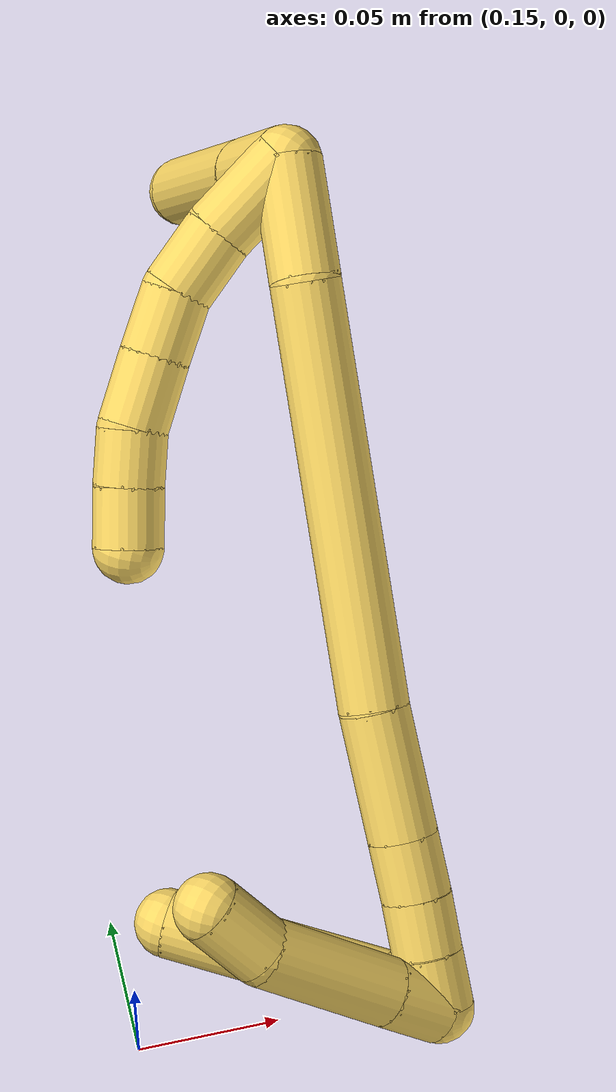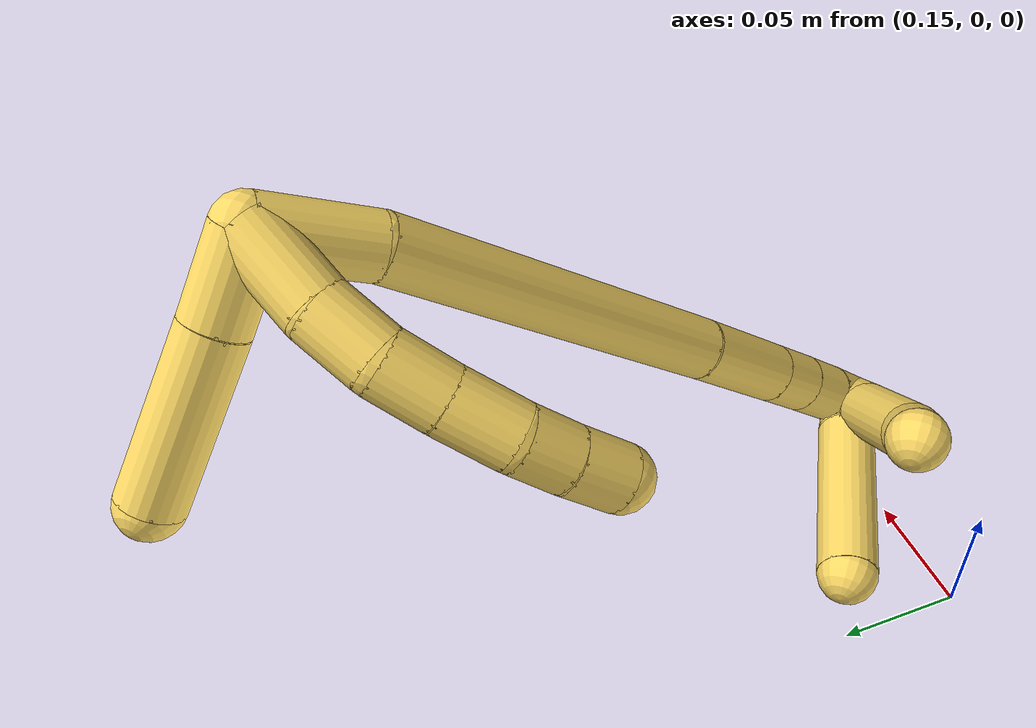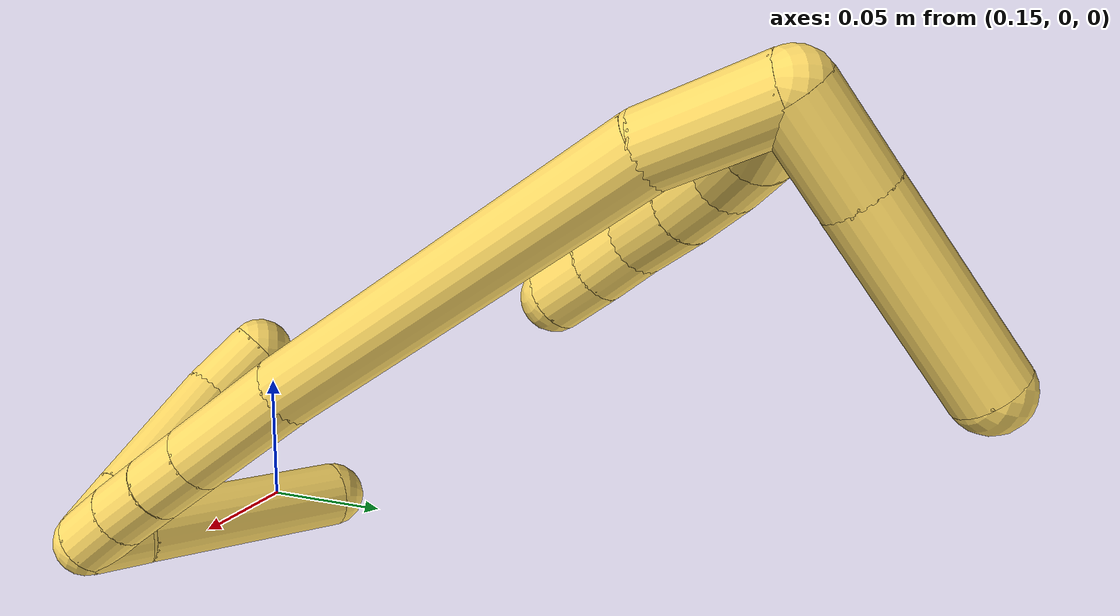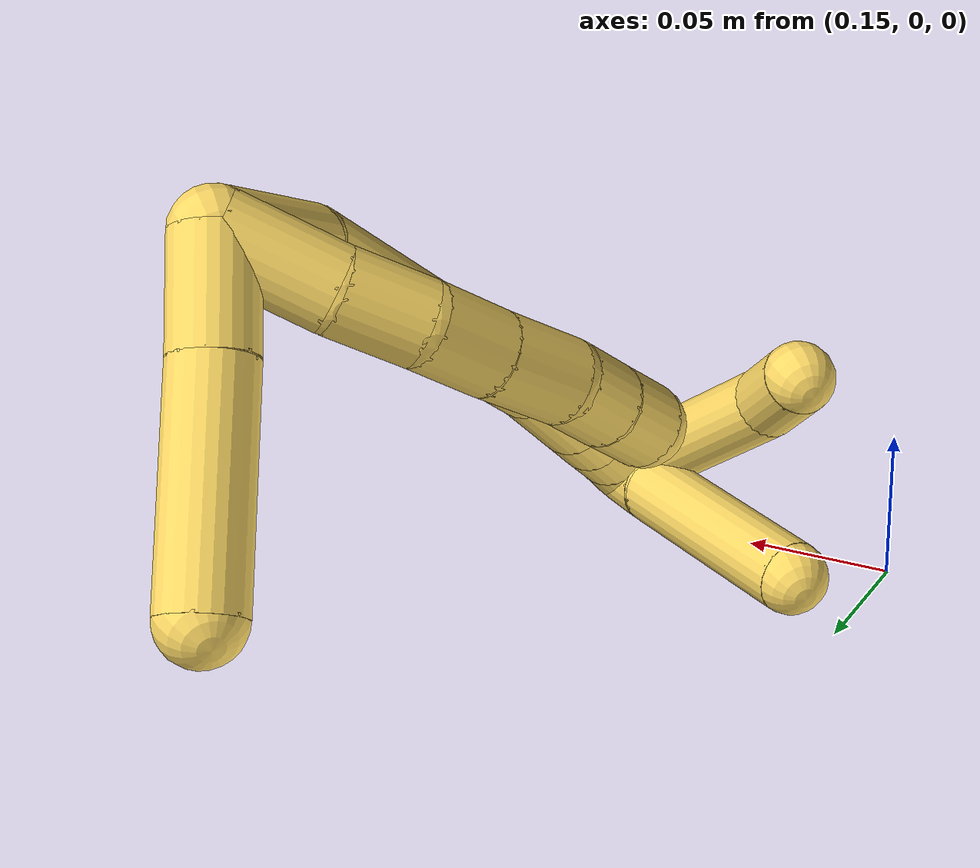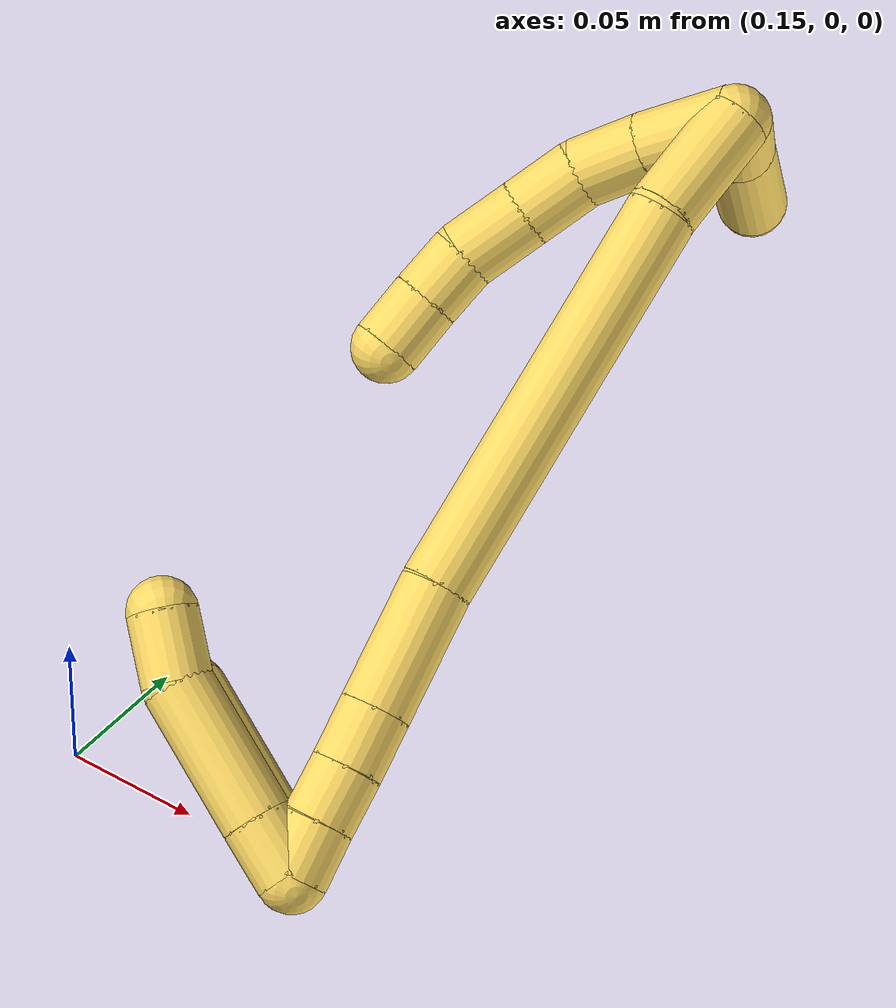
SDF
<sdf version="1.7">
 <world name="default">
  <model name="5">
   <static>0</static>
   <link name="5">
    <collision name="collision-cylinder-e_1_2_8">
     <pose>0.007347 -0.013925 -0.006676 2.01786 0.444054 0.688608</pose>
     <geometry><cylinder><radius>0.0125</radius><length>0.034203</length></cylinder></geometry>
     <surface>
      <friction><ode><mu>1.16</mu><mu2>1.16</mu2><slip1>0</slip1><slip2>0</slip2></ode></friction>
      <contact><ode><kp>1e+06</kp><kd>1</kd><max_vel>0</max_vel><min_depth>0.001</min_depth></ode></contact>
     </surface>
    </collision>
    <visual name="visual-cylinder-e_1_2_8">
     <pose>0.007347 -0.013925 -0.006676 2.01786 0.444054 0.688608</pose>
     <geometry><cylinder><radius>0.0125</radius><length>0.034203</length></cylinder></geometry>
     <material><ambient>1 0.858824 0.4 1</ambient></material>
    </visual>
    <collision name="collision-cylinder-e_2_8_9">
     <pose>0.020189 -0.038636 -0.016255 1.83364 0.45723 0.589449</pose>
     <geometry><cylinder><radius>0.0125</radius><length>0.024895</length></cylinder></geometry>
     <surface>
      <friction><ode><mu>1.16</mu><mu2>1.16</mu2><slip1>0</slip1><slip2>0</slip2></ode></friction>
      <contact><ode><kp>1e+06</kp><kd>1</kd><max_vel>0</max_vel><min_depth>0.001</min_depth></ode></contact>
     </surface>
    </collision>
    <visual name="visual-cylinder-e_2_8_9">
     <pose>0.020189 -0.038636 -0.016255 1.83364 0.45723 0.589449</pose>
     <geometry><cylinder><radius>0.0125</radius><length>0.024895</length></cylinder></geometry>
     <material><ambient>1 0.858824 0.4 1</ambient></material>
    </visual>
    <collision name="collision-cylinder-e_3_9_10">
     <pose>0.032446 -0.059146 -0.0189 1.54441 0.60739 0.59249</pose>
     <geometry><cylinder><radius>0.0125</radius><length>0.023695</length></cylinder></geometry>
     <surface>
      <friction><ode><mu>1.16</mu><mu2>1.16</mu2><slip1>0</slip1><slip2>0</slip2></ode></friction>
      <contact><ode><kp>1e+06</kp><kd>1</kd><max_vel>0</max_vel><min_depth>0.001</min_depth></ode></contact>
     </surface>
    </collision>
    <visual name="visual-cylinder-e_3_9_10">
     <pose>0.032446 -0.059146 -0.0189 1.54441 0.60739 0.59249</pose>
     <geometry><cylinder><radius>0.0125</radius><length>0.023695</length></cylinder></geometry>
     <material><ambient>1 0.858824 0.4 1</ambient></material>
    </visual>
    <collision name="collision-cylinder-e_4_10_11">
     <pose>0.0463 -0.079606 -0.017826 1.49483 0.582558 0.542038</pose>
     <geometry><cylinder><radius>0.0125</radius><length>0.025785</length></cylinder></geometry>
     <surface>
      <friction><ode><mu>1.16</mu><mu2>1.16</mu2><slip1>0</slip1><slip2>0</slip2></ode></friction>
      <contact><ode><kp>1e+06</kp><kd>1</kd><max_vel>0</max_vel><min_depth>0.001</min_depth></ode></contact>
     </surface>
    </collision>
    <visual name="visual-cylinder-e_4_10_11">
     <pose>0.0463 -0.079606 -0.017826 1.49483 0.582558 0.542038</pose>
     <geometry><cylinder><radius>0.0125</radius><length>0.025785</length></cylinder></geometry>
     <material><ambient>1 0.858824 0.4 1</ambient></material>
    </visual>
    <collision name="collision-cylinder-e_5_11_12">
     <pose>0.060124 -0.097397 -0.014681 1.25212 0.736035 0.543817</pose>
     <geometry><cylinder><radius>0.0125</radius><length>0.020051</length></cylinder></geometry>
     <surface>
      <friction><ode><mu>1.16</mu><mu2>1.16</mu2><slip1>0</slip1><slip2>0</slip2></ode></friction>
      <contact><ode><kp>1e+06</kp><kd>1</kd><max_vel>0</max_vel><min_depth>0.001</min_depth></ode></contact>
     </surface>
    </collision>
    <visual name="visual-cylinder-e_5_11_12">
     <pose>0.060124 -0.097397 -0.014681 1.25212 0.736035 0.543817</pose>
     <geometry><cylinder><radius>0.0125</radius><length>0.020051</length></cylinder></geometry>
     <material><ambient>1 0.858824 0.4 1</ambient></material>
    </visual>
    <collision name="collision-cylinder-e_6_12_6">
     <pose>0.073988 -0.111766 -0.009221 1.16619 0.730992 0.494517</pose>
     <geometry><cylinder><radius>0.0125</radius><length>0.021371</length></cylinder></geometry>
     <surface>
      <friction><ode><mu>1.16</mu><mu2>1.16</mu2><slip1>0</slip1><slip2>0</slip2></ode></friction>
      <contact><ode><kp>1e+06</kp><kd>1</kd><max_vel>0</max_vel><min_depth>0.001</min_depth></ode></contact>
     </surface>
    </collision>
    <visual name="visual-cylinder-e_6_12_6">
     <pose>0.073988 -0.111766 -0.009221 1.16619 0.730992 0.494517</pose>
     <geometry><cylinder><radius>0.0125</radius><length>0.021371</length></cylinder></geometry>
     <material><ambient>1 0.858824 0.4 1</ambient></material>
    </visual>
    <collision name="collision-cylinder-e_1_2_13">
     <pose>0.011274 0.003542 -0.012092 -2.85663 0.729928 -2.42326</pose>
     <geometry><cylinder><radius>0.0125</radius><length>0.033816</length></cylinder></geometry>
     <surface>
      <friction><ode><mu>1.16</mu><mu2>1.16</mu2><slip1>0</slip1><slip2>0</slip2></ode></friction>
      <contact><ode><kp>1e+06</kp><kd>1</kd><max_vel>0</max_vel><min_depth>0.001</min_depth></ode></contact>
     </surface>
    </collision>
    <visual name="visual-cylinder-e_1_2_13">
     <pose>0.011274 0.003542 -0.012092 -2.85663 0.729928 -2.42326</pose>
     <geometry><cylinder><radius>0.0125</radius><length>0.033816</length></cylinder></geometry>
     <material><ambient>1 0.858824 0.4 1</ambient></material>
    </visual>
    <collision name="collision-cylinder-e_2_13_5">
     <pose>0.044741 0.015153 -0.047368 -2.80666 0.735021 -2.31412</pose>
     <geometry><cylinder><radius>0.0125</radius><length>0.066184</length></cylinder></geometry>
     <surface>
      <friction><ode><mu>1.16</mu><mu2>1.16</mu2><slip1>0</slip1><slip2>0</slip2></ode></friction>
      <contact><ode><kp>1e+06</kp><kd>1</kd><max_vel>0</max_vel><min_depth>0.001</min_depth></ode></contact>
     </surface>
    </collision>
    <visual name="visual-cylinder-e_2_13_5">
     <pose>0.044741 0.015153 -0.047368 -2.80666 0.735021 -2.31412</pose>
     <geometry><cylinder><radius>0.0125</radius><length>0.066184</length></cylinder></geometry>
     <material><ambient>1 0.858824 0.4 1</ambient></material>
    </visual>
    <collision name="collision-cylinder-e_1_2_14">
     <pose>0.011228 -0.014752 0.010902 0.934339 0.549274 0.282351</pose>
     <geometry><cylinder><radius>0.0125</radius><length>0.043013</length></cylinder></geometry>
     <surface>
      <friction><ode><mu>1.16</mu><mu2>1.16</mu2><slip1>0</slip1><slip2>0</slip2></ode></friction>
      <contact><ode><kp>1e+06</kp><kd>1</kd><max_vel>0</max_vel><min_depth>0.001</min_depth></ode></contact>
     </surface>
    </collision>
    <visual name="visual-cylinder-e_1_2_14">
     <pose>0.011228 -0.014752 0.010902 0.934339 0.549274 0.282351</pose>
     <geometry><cylinder><radius>0.0125</radius><length>0.043013</length></cylinder></geometry>
     <material><ambient>1 0.858824 0.4 1</ambient></material>
    </visual>
    <collision name="collision-cylinder-e_2_14_15">
     <pose>0.073527 -0.073147 0.053663 0.940245 0.75721 0.398882</pose>
     <geometry><cylinder><radius>0.0125</radius><length>0.148702</length></cylinder></geometry>
     <surface>
      <friction><ode><mu>1.16</mu><mu2>1.16</mu2><slip1>0</slip1><slip2>0</slip2></ode></friction>
      <contact><ode><kp>1e+06</kp><kd>1</kd><max_vel>0</max_vel><min_depth>0.001</min_depth></ode></contact>
     </surface>
    </collision>
    <visual name="visual-cylinder-e_2_14_15">
     <pose>0.073527 -0.073147 0.053663 0.940245 0.75721 0.398882</pose>
     <geometry><cylinder><radius>0.0125</radius><length>0.148702</length></cylinder></geometry>
     <material><ambient>1 0.858824 0.4 1</ambient></material>
    </visual>
    <collision name="collision-cylinder-e_3_15_16">
     <pose>0.141372 -0.128638 0.095826 0.854922 0.818388 0.390098</pose>
     <geometry><cylinder><radius>0.0125</radius><length>0.045951</length></cylinder></geometry>
     <surface>
      <friction><ode><mu>1.16</mu><mu2>1.16</mu2><slip1>0</slip1><slip2>0</slip2></ode></friction>
      <contact><ode><kp>1e+06</kp><kd>1</kd><max_vel>0</max_vel><min_depth>0.001</min_depth></ode></contact>
     </surface>
    </collision>
    <visual name="visual-cylinder-e_3_15_16">
     <pose>0.141372 -0.128638 0.095826 0.854922 0.818388 0.390098</pose>
     <geometry><cylinder><radius>0.0125</radius><length>0.045951</length></cylinder></geometry>
     <material><ambient>1 0.858824 0.4 1</ambient></material>
    </visual>
    <collision name="collision-cylinder-e_4_16_17">
     <pose>0.16608 -0.14607 0.111011 0.852549 0.819117 0.389281</pose>
     <geometry><cylinder><radius>0.0125</radius><length>0.021724</length></cylinder></geometry>
     <surface>
      <friction><ode><mu>1.16</mu><mu2>1.16</mu2><slip1>0</slip1><slip2>0</slip2></ode></friction>
      <contact><ode><kp>1e+06</kp><kd>1</kd><max_vel>0</max_vel><min_depth>0.001</min_depth></ode></contact>
     </surface>
    </collision>
    <visual name="visual-cylinder-e_4_16_17">
     <pose>0.16608 -0.14607 0.111011 0.852549 0.819117 0.389281</pose>
     <geometry><cylinder><radius>0.0125</radius><length>0.021724</length></cylinder></geometry>
     <material><ambient>1 0.858824 0.4 1</ambient></material>
    </visual>
    <collision name="collision-cylinder-e_5_17_18">
     <pose>0.18144 -0.157096 0.120234 0.897274 0.817626 0.41119</pose>
     <geometry><cylinder><radius>0.0125</radius><length>0.020353</length></cylinder></geometry>
     <surface>
      <friction><ode><mu>1.16</mu><mu2>1.16</mu2><slip1>0</slip1><slip2>0</slip2></ode></friction>
      <contact><ode><kp>1e+06</kp><kd>1</kd><max_vel>0</max_vel><min_depth>0.001</min_depth></ode></contact>
     </surface>
    </collision>
    <visual name="visual-cylinder-e_5_17_18">
     <pose>0.18144 -0.157096 0.120234 0.897274 0.817626 0.41119</pose>
     <geometry><cylinder><radius>0.0125</radius><length>0.020353</length></cylinder></geometry>
     <material><ambient>1 0.858824 0.4 1</ambient></material>
    </visual>
    <collision name="collision-cylinder-e_6_18_1">
     <pose>0.196517 -0.167652 0.1288 0.880593 0.856572 0.423742</pose>
     <geometry><cylinder><radius>0.0125</radius><length>0.020256</length></cylinder></geometry>
     <surface>
      <friction><ode><mu>1.16</mu><mu2>1.16</mu2><slip1>0</slip1><slip2>0</slip2></ode></friction>
      <contact><ode><kp>1e+06</kp><kd>1</kd><max_vel>0</max_vel><min_depth>0.001</min_depth></ode></contact>
     </surface>
    </collision>
    <visual name="visual-cylinder-e_6_18_1">
     <pose>0.196517 -0.167652 0.1288 0.880593 0.856572 0.423742</pose>
     <geometry><cylinder><radius>0.0125</radius><length>0.020256</length></cylinder></geometry>
     <material><ambient>1 0.858824 0.4 1</ambient></material>
    </visual>
    <collision name="collision-cylinder-e_1_1_19">
     <pose>0.196498 -0.177613 0.126475 2.50456 -0.755382 -1.7547</pose>
     <geometry><cylinder><radius>0.0125</radius><length>0.022379</length></cylinder></geometry>
     <surface>
      <friction><ode><mu>1.16</mu><mu2>1.16</mu2><slip1>0</slip1><slip2>0</slip2></ode></friction>
      <contact><ode><kp>1e+06</kp><kd>1</kd><max_vel>0</max_vel><min_depth>0.001</min_depth></ode></contact>
     </surface>
    </collision>
    <visual name="visual-cylinder-e_1_1_19">
     <pose>0.196498 -0.177613 0.126475 2.50456 -0.755382 -1.7547</pose>
     <geometry><cylinder><radius>0.0125</radius><length>0.022379</length></cylinder></geometry>
     <material><ambient>1 0.858824 0.4 1</ambient></material>
    </visual>
    <collision name="collision-cylinder-e_2_19_20">
     <pose>0.170862 -0.193537 0.104315 2.52446 -0.753673 -1.7855</pose>
     <geometry><cylinder><radius>0.0125</radius><length>0.052505</length></cylinder></geometry>
     <surface>
      <friction><ode><mu>1.16</mu><mu2>1.16</mu2><slip1>0</slip1><slip2>0</slip2></ode></friction>
      <contact><ode><kp>1e+06</kp><kd>1</kd><max_vel>0</max_vel><min_depth>0.001</min_depth></ode></contact>
     </surface>
    </collision>
    <visual name="visual-cylinder-e_2_19_20">
     <pose>0.170862 -0.193537 0.104315 2.52446 -0.753673 -1.7855</pose>
     <geometry><cylinder><radius>0.0125</radius><length>0.052505</length></cylinder></geometry>
     <material><ambient>1 0.858824 0.4 1</ambient></material>
    </visual>
    <collision name="collision-cylinder-e_3_20_4">
     <pose>0.143259 -0.206058 0.080783 2.96134 -0.874883 -2.75981</pose>
     <geometry><cylinder><radius>0.0125</radius><length>0.025116</length></cylinder></geometry>
     <surface>
      <friction><ode><mu>1.16</mu><mu2>1.16</mu2><slip1>0</slip1><slip2>0</slip2></ode></friction>
      <contact><ode><kp>1e+06</kp><kd>1</kd><max_vel>0</max_vel><min_depth>0.001</min_depth></ode></contact>
     </surface>
    </collision>
    <visual name="visual-cylinder-e_3_20_4">
     <pose>0.143259 -0.206058 0.080783 2.96134 -0.874883 -2.75981</pose>
     <geometry><cylinder><radius>0.0125</radius><length>0.025116</length></cylinder></geometry>
     <material><ambient>1 0.858824 0.4 1</ambient></material>
    </visual>
    <collision name="collision-cylinder-e_1_1_21">
     <pose>0.201814 -0.174108 0.122768 3.01166 -0.22394 -2.09249</pose>
     <geometry><cylinder><radius>0.0125</radius><length>0.021215</length></cylinder></geometry>
     <surface>
      <friction><ode><mu>1.16</mu><mu2>1.16</mu2><slip1>0</slip1><slip2>0</slip2></ode></friction>
      <contact><ode><kp>1e+06</kp><kd>1</kd><max_vel>0</max_vel><min_depth>0.001</min_depth></ode></contact>
     </surface>
    </collision>
    <visual name="visual-cylinder-e_1_1_21">
     <pose>0.201814 -0.174108 0.122768 3.01166 -0.22394 -2.09249</pose>
     <geometry><cylinder><radius>0.0125</radius><length>0.021215</length></cylinder></geometry>
     <material><ambient>1 0.858824 0.4 1</ambient></material>
    </visual>
    <collision name="collision-cylinder-e_2_21_3">
     <pose>0.193109 -0.184374 0.074674 2.90995 -0.161886 -1.21774</pose>
     <geometry><cylinder><radius>0.0125</radius><length>0.078785</length></cylinder></geometry>
     <surface>
      <friction><ode><mu>1.16</mu><mu2>1.16</mu2><slip1>0</slip1><slip2>0</slip2></ode></friction>
      <contact><ode><kp>1e+06</kp><kd>1</kd><max_vel>0</max_vel><min_depth>0.001</min_depth></ode></contact>
     </surface>
    </collision>
    <visual name="visual-cylinder-e_2_21_3">
     <pose>0.193109 -0.184374 0.074674 2.90995 -0.161886 -1.21774</pose>
     <geometry><cylinder><radius>0.0125</radius><length>0.078785</length></cylinder></geometry>
     <material><ambient>1 0.858824 0.4 1</ambient></material>
    </visual>
    <collision name="collision-sphere-3">
     <pose>0.18676 -0.193299 0.036835 0 -0 0</pose>
     <geometry><sphere><radius>0.0125</radius></sphere></geometry>
     <surface>
      <friction><ode><mu>1.16</mu><mu2>1.16</mu2><slip1>0</slip1><slip2>0</slip2></ode></friction>
      <contact><ode><kp>1e+06</kp><kd>1</kd><max_vel>0</max_vel><min_depth>0.001</min_depth></ode></contact>
     </surface>
    </collision>
    <visual name="visual-sphere-3">
     <pose>0.18676 -0.193299 0.036835 0 -0 0</pose>
     <geometry><sphere><radius>0.0125</radius></sphere></geometry>
     <material><ambient>1 0.858824 0.4 1</ambient></material>
    </visual>
    <collision name="collision-sphere-21">
     <pose>0.199458 -0.175448 0.112513 0 -0 0</pose>
     <geometry><sphere><radius>0.0125</radius></sphere></geometry>
     <surface>
      <friction><ode><mu>1.16</mu><mu2>1.16</mu2><slip1>0</slip1><slip2>0</slip2></ode></friction>
      <contact><ode><kp>1e+06</kp><kd>1</kd><max_vel>0</max_vel><min_depth>0.001</min_depth></ode></contact>
     </surface>
    </collision>
    <visual name="visual-sphere-21">
     <pose>0.199458 -0.175448 0.112513 0 -0 0</pose>
     <geometry><sphere><radius>0.0125</radius></sphere></geometry>
     <material><ambient>1 0.858824 0.4 1</ambient></material>
    </visual>
    <collision name="collision-sphere-4">
     <pose>0.133621 -0.207501 0.072863 0 -0 0</pose>
     <geometry><sphere><radius>0.0125</radius></sphere></geometry>
     <surface>
      <friction><ode><mu>1.16</mu><mu2>1.16</mu2><slip1>0</slip1><slip2>0</slip2></ode></friction>
      <contact><ode><kp>1e+06</kp><kd>1</kd><max_vel>0</max_vel><min_depth>0.001</min_depth></ode></contact>
     </surface>
    </collision>
    <visual name="visual-sphere-4">
     <pose>0.133621 -0.207501 0.072863 0 -0 0</pose>
     <geometry><sphere><radius>0.0125</radius></sphere></geometry>
     <material><ambient>1 0.858824 0.4 1</ambient></material>
    </visual>
    <collision name="collision-sphere-20">
     <pose>0.152897 -0.204615 0.088703 0 -0 0</pose>
     <geometry><sphere><radius>0.0125</radius></sphere></geometry>
     <surface>
      <friction><ode><mu>1.16</mu><mu2>1.16</mu2><slip1>0</slip1><slip2>0</slip2></ode></friction>
      <contact><ode><kp>1e+06</kp><kd>1</kd><max_vel>0</max_vel><min_depth>0.001</min_depth></ode></contact>
     </surface>
    </collision>
    <visual name="visual-sphere-20">
     <pose>0.152897 -0.204615 0.088703 0 -0 0</pose>
     <geometry><sphere><radius>0.0125</radius></sphere></geometry>
     <material><ambient>1 0.858824 0.4 1</ambient></material>
    </visual>
    <collision name="collision-sphere-12">
     <pose>0.066855 -0.104453 -0.012353 0 -0 0</pose>
     <geometry><sphere><radius>0.0125</radius></sphere></geometry>
     <surface>
      <friction><ode><mu>1.16</mu><mu2>1.16</mu2><slip1>0</slip1><slip2>0</slip2></ode></friction>
      <contact><ode><kp>1e+06</kp><kd>1</kd><max_vel>0</max_vel><min_depth>0.001</min_depth></ode></contact>
     </surface>
    </collision>
    <visual name="visual-sphere-12">
     <pose>0.066855 -0.104453 -0.012353 0 -0 0</pose>
     <geometry><sphere><radius>0.0125</radius></sphere></geometry>
     <material><ambient>1 0.858824 0.4 1</ambient></material>
    </visual>
    <collision name="collision-sphere-11">
     <pose>0.053393 -0.090341 -0.017009 0 -0 0</pose>
     <geometry><sphere><radius>0.0125</radius></sphere></geometry>
     <surface>
      <friction><ode><mu>1.16</mu><mu2>1.16</mu2><slip1>0</slip1><slip2>0</slip2></ode></friction>
      <contact><ode><kp>1e+06</kp><kd>1</kd><max_vel>0</max_vel><min_depth>0.001</min_depth></ode></contact>
     </surface>
    </collision>
    <visual name="visual-sphere-11">
     <pose>0.053393 -0.090341 -0.017009 0 -0 0</pose>
     <geometry><sphere><radius>0.0125</radius></sphere></geometry>
     <material><ambient>1 0.858824 0.4 1</ambient></material>
    </visual>
    <collision name="collision-sphere-10">
     <pose>0.039207 -0.068871 -0.018643 0 -0 0</pose>
     <geometry><sphere><radius>0.0125</radius></sphere></geometry>
     <surface>
      <friction><ode><mu>1.16</mu><mu2>1.16</mu2><slip1>0</slip1><slip2>0</slip2></ode></friction>
      <contact><ode><kp>1e+06</kp><kd>1</kd><max_vel>0</max_vel><min_depth>0.001</min_depth></ode></contact>
     </surface>
    </collision>
    <visual name="visual-sphere-10">
     <pose>0.039207 -0.068871 -0.018643 0 -0 0</pose>
     <geometry><sphere><radius>0.0125</radius></sphere></geometry>
     <material><ambient>1 0.858824 0.4 1</ambient></material>
    </visual>
    <collision name="collision-sphere-9">
     <pose>0.025684 -0.049421 -0.019157 0 -0 0</pose>
     <geometry><sphere><radius>0.0125</radius></sphere></geometry>
     <surface>
      <friction><ode><mu>1.16</mu><mu2>1.16</mu2><slip1>0</slip1><slip2>0</slip2></ode></friction>
      <contact><ode><kp>1e+06</kp><kd>1</kd><max_vel>0</max_vel><min_depth>0.001</min_depth></ode></contact>
     </surface>
    </collision>
    <visual name="visual-sphere-9">
     <pose>0.025684 -0.049421 -0.019157 0 -0 0</pose>
     <geometry><sphere><radius>0.0125</radius></sphere></geometry>
     <material><ambient>1 0.858824 0.4 1</ambient></material>
    </visual>
    <collision name="collision-sphere-2">
     <geometry><sphere><radius>0.0125</radius></sphere></geometry>
     <surface>
      <friction><ode><mu>1.16</mu><mu2>1.16</mu2><slip1>0</slip1><slip2>0</slip2></ode></friction>
      <contact><ode><kp>1e+06</kp><kd>1</kd><max_vel>0</max_vel><min_depth>0.001</min_depth></ode></contact>
     </surface>
    </collision>
    <visual name="visual-sphere-2">
     <geometry><sphere><radius>0.0125</radius></sphere></geometry>
     <material><ambient>1 0.858824 0.4 1</ambient></material>
    </visual>
    <collision name="collision-sphere-19">
     <pose>0.188827 -0.182459 0.119927 0 -0 0</pose>
     <geometry><sphere><radius>0.0125</radius></sphere></geometry>
     <surface>
      <friction><ode><mu>1.16</mu><mu2>1.16</mu2><slip1>0</slip1><slip2>0</slip2></ode></friction>
      <contact><ode><kp>1e+06</kp><kd>1</kd><max_vel>0</max_vel><min_depth>0.001</min_depth></ode></contact>
     </surface>
    </collision>
    <visual name="visual-sphere-19">
     <pose>0.188827 -0.182459 0.119927 0 -0 0</pose>
     <geometry><sphere><radius>0.0125</radius></sphere></geometry>
     <material><ambient>1 0.858824 0.4 1</ambient></material>
    </visual>
    <collision name="collision-sphere-8">
     <pose>0.014694 -0.02785 -0.013353 0 -0 0</pose>
     <geometry><sphere><radius>0.0125</radius></sphere></geometry>
     <surface>
      <friction><ode><mu>1.16</mu><mu2>1.16</mu2><slip1>0</slip1><slip2>0</slip2></ode></friction>
      <contact><ode><kp>1e+06</kp><kd>1</kd><max_vel>0</max_vel><min_depth>0.001</min_depth></ode></contact>
     </surface>
    </collision>
    <visual name="visual-sphere-8">
     <pose>0.014694 -0.02785 -0.013353 0 -0 0</pose>
     <geometry><sphere><radius>0.0125</radius></sphere></geometry>
     <material><ambient>1 0.858824 0.4 1</ambient></material>
    </visual>
    <collision name="collision-sphere-6">
     <pose>0.081122 -0.11908 -0.00609 0 -0 0</pose>
     <geometry><sphere><radius>0.0125</radius></sphere></geometry>
     <surface>
      <friction><ode><mu>1.16</mu><mu2>1.16</mu2><slip1>0</slip1><slip2>0</slip2></ode></friction>
      <contact><ode><kp>1e+06</kp><kd>1</kd><max_vel>0</max_vel><min_depth>0.001</min_depth></ode></contact>
     </surface>
    </collision>
    <visual name="visual-sphere-6">
     <pose>0.081122 -0.11908 -0.00609 0 -0 0</pose>
     <geometry><sphere><radius>0.0125</radius></sphere></geometry>
     <material><ambient>1 0.858824 0.4 1</ambient></material>
    </visual>
    <collision name="collision-sphere-13">
     <pose>0.022549 0.007084 -0.024184 0 -0 0</pose>
     <geometry><sphere><radius>0.0125</radius></sphere></geometry>
     <surface>
      <friction><ode><mu>1.16</mu><mu2>1.16</mu2><slip1>0</slip1><slip2>0</slip2></ode></friction>
      <contact><ode><kp>1e+06</kp><kd>1</kd><max_vel>0</max_vel><min_depth>0.001</min_depth></ode></contact>
     </surface>
    </collision>
    <visual name="visual-sphere-13">
     <pose>0.022549 0.007084 -0.024184 0 -0 0</pose>
     <geometry><sphere><radius>0.0125</radius></sphere></geometry>
     <material><ambient>1 0.858824 0.4 1</ambient></material>
    </visual>
    <collision name="collision-sphere-5">
     <pose>0.066932 0.023223 -0.070552 0 -0 0</pose>
     <geometry><sphere><radius>0.0125</radius></sphere></geometry>
     <surface>
      <friction><ode><mu>1.16</mu><mu2>1.16</mu2><slip1>0</slip1><slip2>0</slip2></ode></friction>
      <contact><ode><kp>1e+06</kp><kd>1</kd><max_vel>0</max_vel><min_depth>0.001</min_depth></ode></contact>
     </surface>
    </collision>
    <visual name="visual-sphere-5">
     <pose>0.066932 0.023223 -0.070552 0 -0 0</pose>
     <geometry><sphere><radius>0.0125</radius></sphere></geometry>
     <material><ambient>1 0.858824 0.4 1</ambient></material>
    </visual>
    <collision name="collision-sphere-14">
     <pose>0.022456 -0.029503 0.021804 0 -0 0</pose>
     <geometry><sphere><radius>0.0125</radius></sphere></geometry>
     <surface>
      <friction><ode><mu>1.16</mu><mu2>1.16</mu2><slip1>0</slip1><slip2>0</slip2></ode></friction>
      <contact><ode><kp>1e+06</kp><kd>1</kd><max_vel>0</max_vel><min_depth>0.001</min_depth></ode></contact>
     </surface>
    </collision>
    <visual name="visual-sphere-14">
     <pose>0.022456 -0.029503 0.021804 0 -0 0</pose>
     <geometry><sphere><radius>0.0125</radius></sphere></geometry>
     <material><ambient>1 0.858824 0.4 1</ambient></material>
    </visual>
    <collision name="collision-sphere-15">
     <pose>0.124599 -0.116791 0.085521 0 -0 0</pose>
     <geometry><sphere><radius>0.0125</radius></sphere></geometry>
     <surface>
      <friction><ode><mu>1.16</mu><mu2>1.16</mu2><slip1>0</slip1><slip2>0</slip2></ode></friction>
      <contact><ode><kp>1e+06</kp><kd>1</kd><max_vel>0</max_vel><min_depth>0.001</min_depth></ode></contact>
     </surface>
    </collision>
    <visual name="visual-sphere-15">
     <pose>0.124599 -0.116791 0.085521 0 -0 0</pose>
     <geometry><sphere><radius>0.0125</radius></sphere></geometry>
     <material><ambient>1 0.858824 0.4 1</ambient></material>
    </visual>
    <collision name="collision-sphere-16">
     <pose>0.158145 -0.140486 0.10613 0 -0 0</pose>
     <geometry><sphere><radius>0.0125</radius></sphere></geometry>
     <surface>
      <friction><ode><mu>1.16</mu><mu2>1.16</mu2><slip1>0</slip1><slip2>0</slip2></ode></friction>
      <contact><ode><kp>1e+06</kp><kd>1</kd><max_vel>0</max_vel><min_depth>0.001</min_depth></ode></contact>
     </surface>
    </collision>
    <visual name="visual-sphere-16">
     <pose>0.158145 -0.140486 0.10613 0 -0 0</pose>
     <geometry><sphere><radius>0.0125</radius></sphere></geometry>
     <material><ambient>1 0.858824 0.4 1</ambient></material>
    </visual>
    <collision name="collision-sphere-17">
     <pose>0.174015 -0.151655 0.115893 0 -0 0</pose>
     <geometry><sphere><radius>0.0125</radius></sphere></geometry>
     <surface>
      <friction><ode><mu>1.16</mu><mu2>1.16</mu2><slip1>0</slip1><slip2>0</slip2></ode></friction>
      <contact><ode><kp>1e+06</kp><kd>1</kd><max_vel>0</max_vel><min_depth>0.001</min_depth></ode></contact>
     </surface>
    </collision>
    <visual name="visual-sphere-17">
     <pose>0.174015 -0.151655 0.115893 0 -0 0</pose>
     <geometry><sphere><radius>0.0125</radius></sphere></geometry>
     <material><ambient>1 0.858824 0.4 1</ambient></material>
    </visual>
    <collision name="collision-sphere-18">
     <pose>0.188864 -0.162536 0.124576 0 -0 0</pose>
     <geometry><sphere><radius>0.0125</radius></sphere></geometry>
     <surface>
      <friction><ode><mu>1.16</mu><mu2>1.16</mu2><slip1>0</slip1><slip2>0</slip2></ode></friction>
      <contact><ode><kp>1e+06</kp><kd>1</kd><max_vel>0</max_vel><min_depth>0.001</min_depth></ode></contact>
     </surface>
    </collision>
    <visual name="visual-sphere-18">
     <pose>0.188864 -0.162536 0.124576 0 -0 0</pose>
     <geometry><sphere><radius>0.0125</radius></sphere></geometry>
     <material><ambient>1 0.858824 0.4 1</ambient></material>
    </visual>
    <collision name="collision-sphere-1">
     <pose>0.204169 -0.172768 0.133024 0 -0 0</pose>
     <geometry><sphere><radius>0.0125</radius></sphere></geometry>
     <surface>
      <friction><ode><mu>1.16</mu><mu2>1.16</mu2><slip1>0</slip1><slip2>0</slip2></ode></friction>
      <contact><ode><kp>1e+06</kp><kd>1</kd><max_vel>0</max_vel><min_depth>0.001</min_depth></ode></contact>
     </surface>
    </collision>
    <visual name="visual-sphere-1">
     <pose>0.204169 -0.172768 0.133024 0 -0 0</pose>
     <geometry><sphere><radius>0.0125</radius></sphere></geometry>
     <material><ambient>1 0.858824 0.4 1</ambient></material>
    </visual>
    <inertial>
     <pose>0.099336 -0.097109 0.044757 0 -0 0</pose>
     <mass>0.75</mass>
     <inertia>
      <ixx>0.000249</ixx>
      <ixy>0</ixy>
      <ixz>0</ixz>
      <iyy>0.000253</iyy>
      <iyz>0</iyz>
      <izz>-2.5e-05</izz>
     </inertia>
    </inertial>
   </link>
   <pose>0.256952 0.234977 0.178574 -0.221694 1.36754 -0.985848</pose>
  </model>
 </world>
</sdf>
